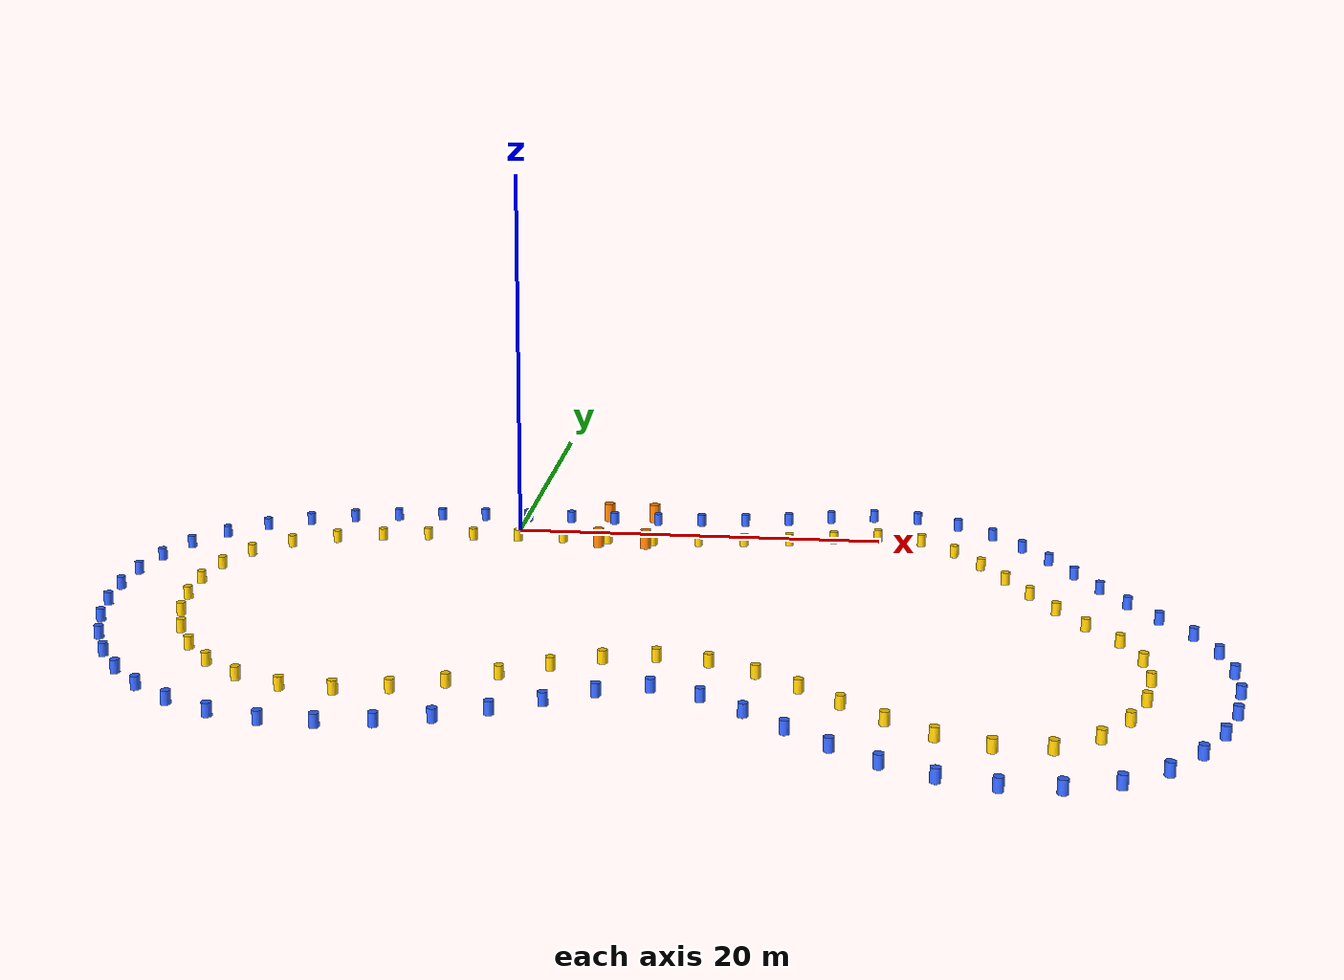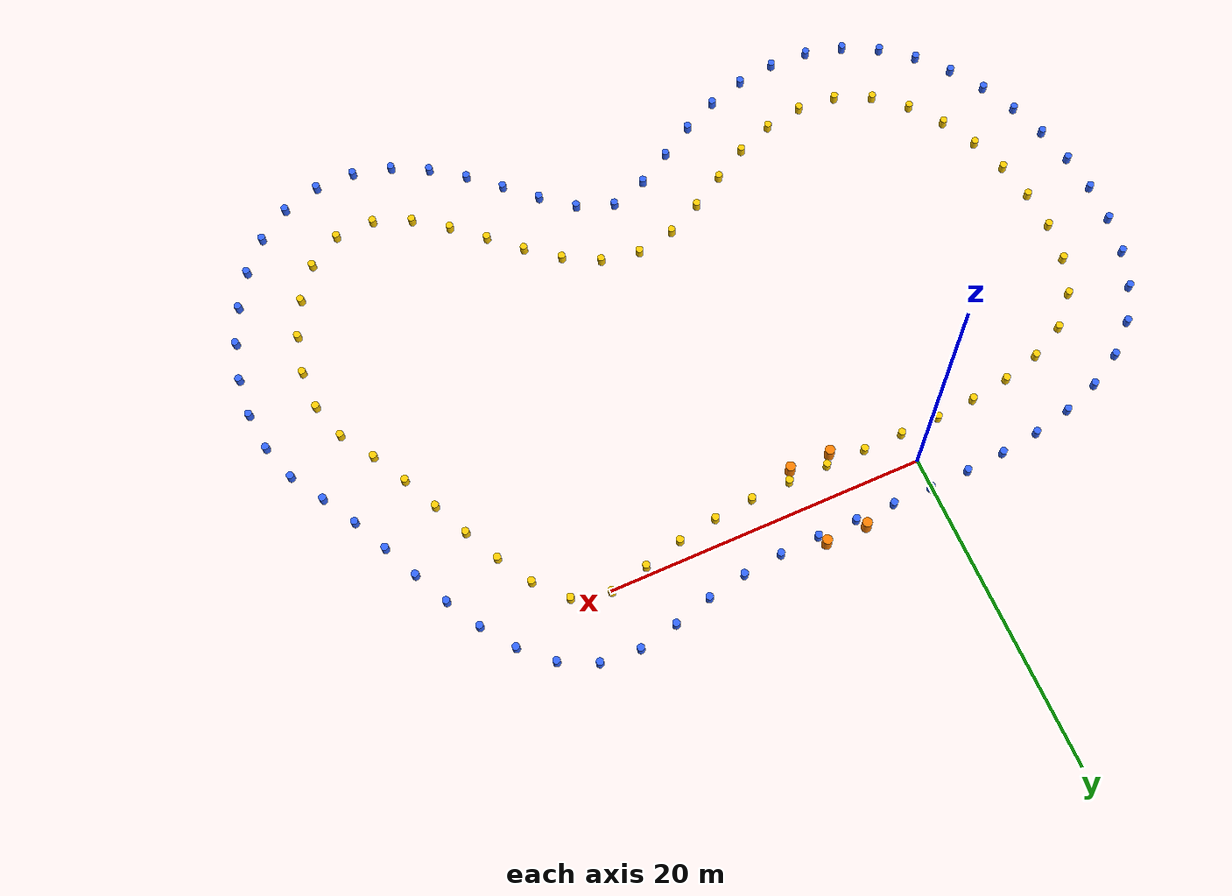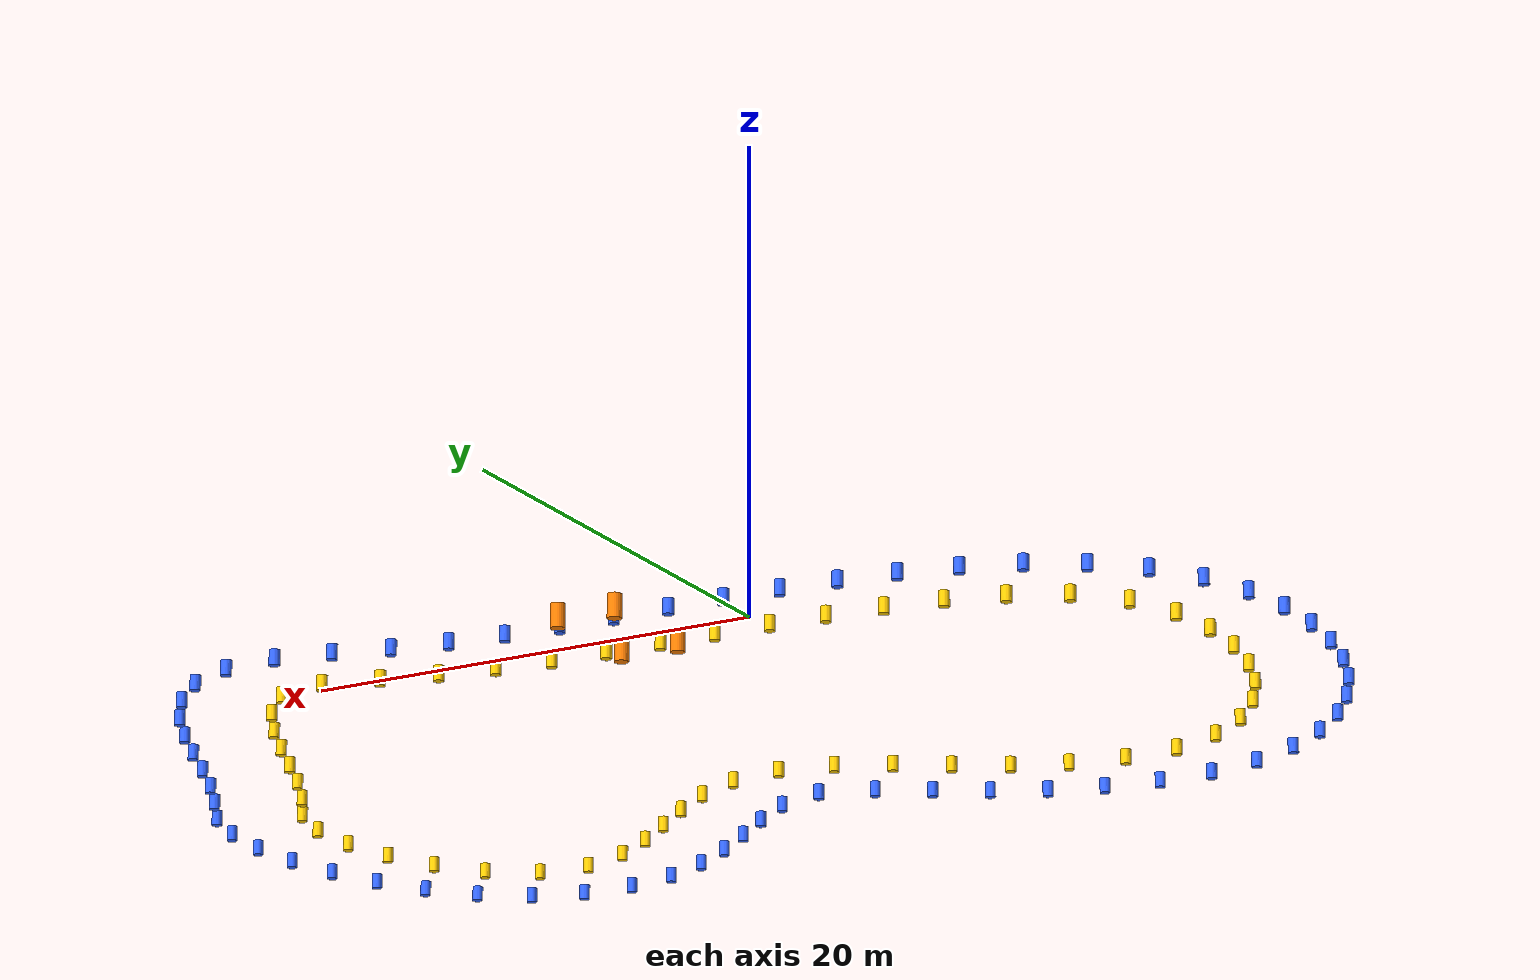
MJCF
<?xml version="1.0" ?>
<mujoco model="random_track">
  <compiler angle="radian" coordinate="local" autolimits="true"/>
  <default>
    <default class="cone">
      <joint type="free" damping="0.1" frictionloss="0.05"/>
      <geom condim="4" friction="0.5 0.005 0.0001" solref="0.02 1.0" solimp="0.99 0.99 0.001"/>
    </default>
  </default>
  <asset>
    <material name="blue_cone" rgba="0.2 0.4 1.0 1.0" specular="0.5" shininess="0.2"/>
    <material name="yellow_cone" rgba="1.0 0.8 0.0 1.0" specular="0.5" shininess="0.2"/>
    <material name="orange_cone" rgba="1.0 0.5 0.0 1.0" specular="0.5" shininess="0.2"/>
  </asset>
  <worldbody>
    <body name="cone_left_0000" pos="9.728265726091813 -23.504329453617913 0.325">
      <joint name="cone_left_joint_0000" type="free" damping="0.1" frictionloss="0.05"/>
      <geom name="cone_left_vis_0000" type="cylinder" size="0.228 0.325" material="blue_cone" mass="1.0" density="100" condim="4" friction="0.5 0.005 0.0001" solref="0.02 1.0" solimp="0.99 0.99 0.001"/>
    </body>
    <body name="cone_left_0001" pos="7.4020776837619024 -24.30468990198235 0.325">
      <joint name="cone_left_joint_0001" type="free" damping="0.1" frictionloss="0.05"/>
      <geom name="cone_left_vis_0001" type="cylinder" size="0.228 0.325" material="blue_cone" mass="1.0" density="100" condim="4" friction="0.5 0.005 0.0001" solref="0.02 1.0" solimp="0.99 0.99 0.001"/>
    </body>
    <body name="cone_left_0002" pos="5.268614257110258 -25.569127082905304 0.325">
      <joint name="cone_left_joint_0002" type="free" damping="0.1" frictionloss="0.05"/>
      <geom name="cone_left_vis_0002" type="cylinder" size="0.228 0.325" material="blue_cone" mass="1.0" density="100" condim="4" friction="0.5 0.005 0.0001" solref="0.02 1.0" solimp="0.99 0.99 0.001"/>
    </body>
    <body name="cone_left_0003" pos="3.135994896420222 -26.83525465517925 0.325">
      <joint name="cone_left_joint_0003" type="free" damping="0.1" frictionloss="0.05"/>
      <geom name="cone_left_vis_0003" type="cylinder" size="0.228 0.325" material="blue_cone" mass="1.0" density="100" condim="4" friction="0.5 0.005 0.0001" solref="0.02 1.0" solimp="0.99 0.99 0.001"/>
    </body>
    <body name="cone_left_0004" pos="0.896569729005499 -27.89783842715937 0.325">
      <joint name="cone_left_joint_0004" type="free" damping="0.1" frictionloss="0.05"/>
      <geom name="cone_left_vis_0004" type="cylinder" size="0.228 0.325" material="blue_cone" mass="1.0" density="100" condim="4" friction="0.5 0.005 0.0001" solref="0.02 1.0" solimp="0.99 0.99 0.001"/>
    </body>
    <body name="cone_left_0005" pos="-1.4673568981060328 -28.641685663491884 0.325">
      <joint name="cone_left_joint_0005" type="free" damping="0.1" frictionloss="0.05"/>
      <geom name="cone_left_vis_0005" type="cylinder" size="0.228 0.325" material="blue_cone" mass="1.0" density="100" condim="4" friction="0.5 0.005 0.0001" solref="0.02 1.0" solimp="0.99 0.99 0.001"/>
    </body>
    <body name="cone_left_0006" pos="-3.9179085333184602 -29.00594339214217 0.325">
      <joint name="cone_left_joint_0006" type="free" damping="0.1" frictionloss="0.05"/>
      <geom name="cone_left_vis_0006" type="cylinder" size="0.228 0.325" material="blue_cone" mass="1.0" density="100" condim="4" friction="0.5 0.005 0.0001" solref="0.02 1.0" solimp="0.99 0.99 0.001"/>
    </body>
    <body name="cone_left_0007" pos="-6.3927937042840135 -28.918925698790765 0.325">
      <joint name="cone_left_joint_0007" type="free" damping="0.1" frictionloss="0.05"/>
      <geom name="cone_left_vis_0007" type="cylinder" size="0.228 0.325" material="blue_cone" mass="1.0" density="100" condim="4" friction="0.5 0.005 0.0001" solref="0.02 1.0" solimp="0.99 0.99 0.001"/>
    </body>
    <body name="cone_left_0008" pos="-8.792770148159871 -28.313469615702715 0.325">
      <joint name="cone_left_joint_0008" type="free" damping="0.1" frictionloss="0.05"/>
      <geom name="cone_left_vis_0008" type="cylinder" size="0.228 0.325" material="blue_cone" mass="1.0" density="100" condim="4" friction="0.5 0.005 0.0001" solref="0.02 1.0" solimp="0.99 0.99 0.001"/>
    </body>
    <body name="cone_left_0009" pos="-10.997108146379261 -27.18690193711859 0.325">
      <joint name="cone_left_joint_0009" type="free" damping="0.1" frictionloss="0.05"/>
      <geom name="cone_left_vis_0009" type="cylinder" size="0.228 0.325" material="blue_cone" mass="1.0" density="100" condim="4" friction="0.5 0.005 0.0001" solref="0.02 1.0" solimp="0.99 0.99 0.001"/>
    </body>
    <body name="cone_left_0010" pos="-12.931268482255966 -25.639733980462758 0.325">
      <joint name="cone_left_joint_0010" type="free" damping="0.1" frictionloss="0.05"/>
      <geom name="cone_left_vis_0010" type="cylinder" size="0.228 0.325" material="blue_cone" mass="1.0" density="100" condim="4" friction="0.5 0.005 0.0001" solref="0.02 1.0" solimp="0.99 0.99 0.001"/>
    </body>
    <body name="cone_left_0011" pos="-14.573021458839388 -23.783814786753794 0.325">
      <joint name="cone_left_joint_0011" type="free" damping="0.1" frictionloss="0.05"/>
      <geom name="cone_left_vis_0011" type="cylinder" size="0.228 0.325" material="blue_cone" mass="1.0" density="100" condim="4" friction="0.5 0.005 0.0001" solref="0.02 1.0" solimp="0.99 0.99 0.001"/>
    </body>
    <body name="cone_left_0012" pos="-15.92704050537225 -21.707837692918595 0.325">
      <joint name="cone_left_joint_0012" type="free" damping="0.1" frictionloss="0.05"/>
      <geom name="cone_left_vis_0012" type="cylinder" size="0.228 0.325" material="blue_cone" mass="1.0" density="100" condim="4" friction="0.5 0.005 0.0001" solref="0.02 1.0" solimp="0.99 0.99 0.001"/>
    </body>
    <body name="cone_left_0013" pos="-17.00479348696907 -19.47546018363994 0.325">
      <joint name="cone_left_joint_0013" type="free" damping="0.1" frictionloss="0.05"/>
      <geom name="cone_left_vis_0013" type="cylinder" size="0.228 0.325" material="blue_cone" mass="1.0" density="100" condim="4" friction="0.5 0.005 0.0001" solref="0.02 1.0" solimp="0.99 0.99 0.001"/>
    </body>
    <body name="cone_left_0014" pos="-17.81670067838189 -17.13303848239041 0.325">
      <joint name="cone_left_joint_0014" type="free" damping="0.1" frictionloss="0.05"/>
      <geom name="cone_left_vis_0014" type="cylinder" size="0.228 0.325" material="blue_cone" mass="1.0" density="100" condim="4" friction="0.5 0.005 0.0001" solref="0.02 1.0" solimp="0.99 0.99 0.001"/>
    </body>
    <body name="cone_left_0015" pos="-18.36425972587672 -14.715100868699707 0.325">
      <joint name="cone_left_joint_0015" type="free" damping="0.1" frictionloss="0.05"/>
      <geom name="cone_left_vis_0015" type="cylinder" size="0.228 0.325" material="blue_cone" mass="1.0" density="100" condim="4" friction="0.5 0.005 0.0001" solref="0.02 1.0" solimp="0.99 0.99 0.001"/>
    </body>
    <body name="cone_left_0016" pos="-18.634315336108095 -12.2508492829908 0.325">
      <joint name="cone_left_joint_0016" type="free" damping="0.1" frictionloss="0.05"/>
      <geom name="cone_left_vis_0016" type="cylinder" size="0.228 0.325" material="blue_cone" mass="1.0" density="100" condim="4" friction="0.5 0.005 0.0001" solref="0.02 1.0" solimp="0.99 0.99 0.001"/>
    </body>
    <body name="cone_left_0017" pos="-18.59591018153526 -9.772554962005287 0.325">
      <joint name="cone_left_joint_0017" type="free" damping="0.1" frictionloss="0.05"/>
      <geom name="cone_left_vis_0017" type="cylinder" size="0.228 0.325" material="blue_cone" mass="1.0" density="100" condim="4" friction="0.5 0.005 0.0001" solref="0.02 1.0" solimp="0.99 0.99 0.001"/>
    </body>
    <body name="cone_left_0018" pos="-18.19708528801242 -7.327110549585768 0.325">
      <joint name="cone_left_joint_0018" type="free" damping="0.1" frictionloss="0.05"/>
      <geom name="cone_left_vis_0018" type="cylinder" size="0.228 0.325" material="blue_cone" mass="1.0" density="100" condim="4" friction="0.5 0.005 0.0001" solref="0.02 1.0" solimp="0.99 0.99 0.001"/>
    </body>
    <body name="cone_left_0019" pos="-17.365390780125594 -4.9947567060267914 0.325">
      <joint name="cone_left_joint_0019" type="free" damping="0.1" frictionloss="0.05"/>
      <geom name="cone_left_vis_0019" type="cylinder" size="0.228 0.325" material="blue_cone" mass="1.0" density="100" condim="4" friction="0.5 0.005 0.0001" solref="0.02 1.0" solimp="0.99 0.99 0.001"/>
    </body>
    <body name="cone_left_0020" pos="-16.030215566027472 -2.912140676148539 0.325">
      <joint name="cone_left_joint_0020" type="free" damping="0.1" frictionloss="0.05"/>
      <geom name="cone_left_vis_0020" type="cylinder" size="0.228 0.325" material="blue_cone" mass="1.0" density="100" condim="4" friction="0.5 0.005 0.0001" solref="0.02 1.0" solimp="0.99 0.99 0.001"/>
    </body>
    <body name="cone_left_0021" pos="-14.208869604302425 -1.2378606676420247 0.325">
      <joint name="cone_left_joint_0021" type="free" damping="0.1" frictionloss="0.05"/>
      <geom name="cone_left_vis_0021" type="cylinder" size="0.228 0.325" material="blue_cone" mass="1.0" density="100" condim="4" friction="0.5 0.005 0.0001" solref="0.02 1.0" solimp="0.99 0.99 0.001"/>
    </body>
    <body name="cone_left_0022" pos="-12.055587197474914 -0.015124917085017842 0.325">
      <joint name="cone_left_joint_0022" type="free" damping="0.1" frictionloss="0.05"/>
      <geom name="cone_left_vis_0022" type="cylinder" size="0.228 0.325" material="blue_cone" mass="1.0" density="100" condim="4" friction="0.5 0.005 0.0001" solref="0.02 1.0" solimp="0.99 0.99 0.001"/>
    </body>
    <body name="cone_left_0023" pos="-9.720920393553186 0.8159391345700442 0.325">
      <joint name="cone_left_joint_0023" type="free" damping="0.1" frictionloss="0.05"/>
      <geom name="cone_left_vis_0023" type="cylinder" size="0.228 0.325" material="blue_cone" mass="1.0" density="100" condim="4" friction="0.5 0.005 0.0001" solref="0.02 1.0" solimp="0.99 0.99 0.001"/>
    </body>
    <body name="cone_left_0024" pos="-7.299571189504263 1.3488570782862581 0.325">
      <joint name="cone_left_joint_0024" type="free" damping="0.1" frictionloss="0.05"/>
      <geom name="cone_left_vis_0024" type="cylinder" size="0.228 0.325" material="blue_cone" mass="1.0" density="100" condim="4" friction="0.5 0.005 0.0001" solref="0.02 1.0" solimp="0.99 0.99 0.001"/>
    </body>
    <body name="cone_left_0025" pos="-4.840169050569607 1.6669470691053334 0.325">
      <joint name="cone_left_joint_0025" type="free" damping="0.1" frictionloss="0.05"/>
      <geom name="cone_left_vis_0025" type="cylinder" size="0.228 0.325" material="blue_cone" mass="1.0" density="100" condim="4" friction="0.5 0.005 0.0001" solref="0.02 1.0" solimp="0.99 0.99 0.001"/>
    </body>
    <body name="cone_left_0026" pos="-2.3656578266173653 1.8345651387532342 0.325">
      <joint name="cone_left_joint_0026" type="free" damping="0.1" frictionloss="0.05"/>
      <geom name="cone_left_vis_0026" type="cylinder" size="0.228 0.325" material="blue_cone" mass="1.0" density="100" condim="4" friction="0.5 0.005 0.0001" solref="0.02 1.0" solimp="0.99 0.99 0.001"/>
    </body>
    <body name="cone_left_0027" pos="0.11376812079924292 1.9016730011369276 0.325">
      <joint name="cone_left_joint_0027" type="free" damping="0.1" frictionloss="0.05"/>
      <geom name="cone_left_vis_0027" type="cylinder" size="0.228 0.325" material="blue_cone" mass="1.0" density="100" condim="4" friction="0.5 0.005 0.0001" solref="0.02 1.0" solimp="0.99 0.99 0.001"/>
    </body>
    <body name="cone_left_0028" pos="2.5941683152644543 1.909752062994528 0.325">
      <joint name="cone_left_joint_0028" type="free" damping="0.1" frictionloss="0.05"/>
      <geom name="cone_left_vis_0028" type="cylinder" size="0.228 0.325" material="blue_cone" mass="1.0" density="100" condim="4" friction="0.5 0.005 0.0001" solref="0.02 1.0" solimp="0.99 0.99 0.001"/>
    </body>
    <body name="cone_left_0029" pos="5.0745854285158245 1.8993706383049727 0.325">
      <joint name="cone_left_joint_0029" type="free" damping="0.1" frictionloss="0.05"/>
      <geom name="cone_left_vis_0029" type="cylinder" size="0.228 0.325" material="blue_cone" mass="1.0" density="100" condim="4" friction="0.5 0.005 0.0001" solref="0.02 1.0" solimp="0.99 0.99 0.001"/>
    </body>
    <body name="cone_left_0030" pos="7.554906401221366 1.9175858708433822 0.325">
      <joint name="cone_left_joint_0030" type="free" damping="0.1" frictionloss="0.05"/>
      <geom name="cone_left_vis_0030" type="cylinder" size="0.228 0.325" material="blue_cone" mass="1.0" density="100" condim="4" friction="0.5 0.005 0.0001" solref="0.02 1.0" solimp="0.99 0.99 0.001"/>
    </body>
    <body name="cone_left_0031" pos="10.032946408234828 2.0212361302402115 0.325">
      <joint name="cone_left_joint_0031" type="free" damping="0.1" frictionloss="0.05"/>
      <geom name="cone_left_vis_0031" type="cylinder" size="0.228 0.325" material="blue_cone" mass="1.0" density="100" condim="4" friction="0.5 0.005 0.0001" solref="0.02 1.0" solimp="0.99 0.99 0.001"/>
    </body>
    <body name="cone_left_0032" pos="12.499873294651785 2.2744190536538866 0.325">
      <joint name="cone_left_joint_0032" type="free" damping="0.1" frictionloss="0.05"/>
      <geom name="cone_left_vis_0032" type="cylinder" size="0.228 0.325" material="blue_cone" mass="1.0" density="100" condim="4" friction="0.5 0.005 0.0001" solref="0.02 1.0" solimp="0.99 0.99 0.001"/>
    </body>
    <body name="cone_left_0033" pos="14.937154908793623 2.7304958029628494 0.325">
      <joint name="cone_left_joint_0033" type="free" damping="0.1" frictionloss="0.05"/>
      <geom name="cone_left_vis_0033" type="cylinder" size="0.228 0.325" material="blue_cone" mass="1.0" density="100" condim="4" friction="0.5 0.005 0.0001" solref="0.02 1.0" solimp="0.99 0.99 0.001"/>
    </body>
    <body name="cone_left_0034" pos="17.32991591031648 3.3830721485224586 0.325">
      <joint name="cone_left_joint_0034" type="free" damping="0.1" frictionloss="0.05"/>
      <geom name="cone_left_vis_0034" type="cylinder" size="0.228 0.325" material="blue_cone" mass="1.0" density="100" condim="4" friction="0.5 0.005 0.0001" solref="0.02 1.0" solimp="0.99 0.99 0.001"/>
    </body>
    <body name="cone_left_0035" pos="19.755862619129573 3.884558041433806 0.325">
      <joint name="cone_left_joint_0035" type="free" damping="0.1" frictionloss="0.05"/>
      <geom name="cone_left_vis_0035" type="cylinder" size="0.228 0.325" material="blue_cone" mass="1.0" density="100" condim="4" friction="0.5 0.005 0.0001" solref="0.02 1.0" solimp="0.99 0.99 0.001"/>
    </body>
    <body name="cone_left_0036" pos="22.214419422439583 3.6897345239000714 0.325">
      <joint name="cone_left_joint_0036" type="free" damping="0.1" frictionloss="0.05"/>
      <geom name="cone_left_vis_0036" type="cylinder" size="0.228 0.325" material="blue_cone" mass="1.0" density="100" condim="4" friction="0.5 0.005 0.0001" solref="0.02 1.0" solimp="0.99 0.99 0.001"/>
    </body>
    <body name="cone_left_0037" pos="24.436716652076008 2.6172078097225437 0.325">
      <joint name="cone_left_joint_0037" type="free" damping="0.1" frictionloss="0.05"/>
      <geom name="cone_left_vis_0037" type="cylinder" size="0.228 0.325" material="blue_cone" mass="1.0" density="100" condim="4" friction="0.5 0.005 0.0001" solref="0.02 1.0" solimp="0.99 0.99 0.001"/>
    </body>
    <body name="cone_left_0038" pos="26.242740800873655 0.9263466211415192 0.325">
      <joint name="cone_left_joint_0038" type="free" damping="0.1" frictionloss="0.05"/>
      <geom name="cone_left_vis_0038" type="cylinder" size="0.228 0.325" material="blue_cone" mass="1.0" density="100" condim="4" friction="0.5 0.005 0.0001" solref="0.02 1.0" solimp="0.99 0.99 0.001"/>
    </body>
    <body name="cone_left_0039" pos="27.68760960448428 -1.0870226157336162 0.325">
      <joint name="cone_left_joint_0039" type="free" damping="0.1" frictionloss="0.05"/>
      <geom name="cone_left_vis_0039" type="cylinder" size="0.228 0.325" material="blue_cone" mass="1.0" density="100" condim="4" friction="0.5 0.005 0.0001" solref="0.02 1.0" solimp="0.99 0.99 0.001"/>
    </body>
    <body name="cone_left_0040" pos="28.898695189950587 -3.250928273390585 0.325">
      <joint name="cone_left_joint_0040" type="free" damping="0.1" frictionloss="0.05"/>
      <geom name="cone_left_vis_0040" type="cylinder" size="0.228 0.325" material="blue_cone" mass="1.0" density="100" condim="4" friction="0.5 0.005 0.0001" solref="0.02 1.0" solimp="0.99 0.99 0.001"/>
    </body>
    <body name="cone_left_0041" pos="29.983652380552286 -5.481343375336422 0.325">
      <joint name="cone_left_joint_0041" type="free" damping="0.1" frictionloss="0.05"/>
      <geom name="cone_left_vis_0041" type="cylinder" size="0.228 0.325" material="blue_cone" mass="1.0" density="100" condim="4" friction="0.5 0.005 0.0001" solref="0.02 1.0" solimp="0.99 0.99 0.001"/>
    </body>
    <body name="cone_left_0042" pos="31.027118424165465 -7.731620763666172 0.325">
      <joint name="cone_left_joint_0042" type="free" damping="0.1" frictionloss="0.05"/>
      <geom name="cone_left_vis_0042" type="cylinder" size="0.228 0.325" material="blue_cone" mass="1.0" density="100" condim="4" friction="0.5 0.005 0.0001" solref="0.02 1.0" solimp="0.99 0.99 0.001"/>
    </body>
    <body name="cone_left_0043" pos="32.110124490185 -9.962970215645683 0.325">
      <joint name="cone_left_joint_0043" type="free" damping="0.1" frictionloss="0.05"/>
      <geom name="cone_left_vis_0043" type="cylinder" size="0.228 0.325" material="blue_cone" mass="1.0" density="100" condim="4" friction="0.5 0.005 0.0001" solref="0.02 1.0" solimp="0.99 0.99 0.001"/>
    </body>
    <body name="cone_left_0044" pos="33.33921697790839 -12.116227544203952 0.325">
      <joint name="cone_left_joint_0044" type="free" damping="0.1" frictionloss="0.05"/>
      <geom name="cone_left_vis_0044" type="cylinder" size="0.228 0.325" material="blue_cone" mass="1.0" density="100" condim="4" friction="0.5 0.005 0.0001" solref="0.02 1.0" solimp="0.99 0.99 0.001"/>
    </body>
    <body name="cone_left_0045" pos="34.62937839824687 -14.230102925712046 0.325">
      <joint name="cone_left_joint_0045" type="free" damping="0.1" frictionloss="0.05"/>
      <geom name="cone_left_vis_0045" type="cylinder" size="0.228 0.325" material="blue_cone" mass="1.0" density="100" condim="4" friction="0.5 0.005 0.0001" solref="0.02 1.0" solimp="0.99 0.99 0.001"/>
    </body>
    <body name="cone_left_0046" pos="35.397815048903254 -16.582636594140133 0.325">
      <joint name="cone_left_joint_0046" type="free" damping="0.1" frictionloss="0.05"/>
      <geom name="cone_left_vis_0046" type="cylinder" size="0.228 0.325" material="blue_cone" mass="1.0" density="100" condim="4" friction="0.5 0.005 0.0001" solref="0.02 1.0" solimp="0.99 0.99 0.001"/>
    </body>
    <body name="cone_left_0047" pos="35.6522112788532 -19.04608768622883 0.325">
      <joint name="cone_left_joint_0047" type="free" damping="0.1" frictionloss="0.05"/>
      <geom name="cone_left_vis_0047" type="cylinder" size="0.228 0.325" material="blue_cone" mass="1.0" density="100" condim="4" friction="0.5 0.005 0.0001" solref="0.02 1.0" solimp="0.99 0.99 0.001"/>
    </body>
    <body name="cone_left_0048" pos="35.464390313198564 -21.516556440749575 0.325">
      <joint name="cone_left_joint_0048" type="free" damping="0.1" frictionloss="0.05"/>
      <geom name="cone_left_vis_0048" type="cylinder" size="0.228 0.325" material="blue_cone" mass="1.0" density="100" condim="4" friction="0.5 0.005 0.0001" solref="0.02 1.0" solimp="0.99 0.99 0.001"/>
    </body>
    <body name="cone_left_0049" pos="34.89309957853153 -23.92791409431539 0.325">
      <joint name="cone_left_joint_0049" type="free" damping="0.1" frictionloss="0.05"/>
      <geom name="cone_left_vis_0049" type="cylinder" size="0.228 0.325" material="blue_cone" mass="1.0" density="100" condim="4" friction="0.5 0.005 0.0001" solref="0.02 1.0" solimp="0.99 0.99 0.001"/>
    </body>
    <body name="cone_left_0050" pos="33.972329866915956 -26.22868483358164 0.325">
      <joint name="cone_left_joint_0050" type="free" damping="0.1" frictionloss="0.05"/>
      <geom name="cone_left_vis_0050" type="cylinder" size="0.228 0.325" material="blue_cone" mass="1.0" density="100" condim="4" friction="0.5 0.005 0.0001" solref="0.02 1.0" solimp="0.99 0.99 0.001"/>
    </body>
    <body name="cone_left_0051" pos="32.7133901548427 -28.362847563966 0.325">
      <joint name="cone_left_joint_0051" type="free" damping="0.1" frictionloss="0.05"/>
      <geom name="cone_left_vis_0051" type="cylinder" size="0.228 0.325" material="blue_cone" mass="1.0" density="100" condim="4" friction="0.5 0.005 0.0001" solref="0.02 1.0" solimp="0.99 0.99 0.001"/>
    </body>
    <body name="cone_left_0052" pos="31.099938029190056 -30.241092515044514 0.325">
      <joint name="cone_left_joint_0052" type="free" damping="0.1" frictionloss="0.05"/>
      <geom name="cone_left_vis_0052" type="cylinder" size="0.228 0.325" material="blue_cone" mass="1.0" density="100" condim="4" friction="0.5 0.005 0.0001" solref="0.02 1.0" solimp="0.99 0.99 0.001"/>
    </body>
    <body name="cone_left_0053" pos="29.075828068408853 -31.65934876975443 0.325">
      <joint name="cone_left_joint_0053" type="free" damping="0.1" frictionloss="0.05"/>
      <geom name="cone_left_vis_0053" type="cylinder" size="0.228 0.325" material="blue_cone" mass="1.0" density="100" condim="4" friction="0.5 0.005 0.0001" solref="0.02 1.0" solimp="0.99 0.99 0.001"/>
    </body>
    <body name="cone_left_0054" pos="26.716274506325696 -32.39238933648521 0.325">
      <joint name="cone_left_joint_0054" type="free" damping="0.1" frictionloss="0.05"/>
      <geom name="cone_left_vis_0054" type="cylinder" size="0.228 0.325" material="blue_cone" mass="1.0" density="100" condim="4" friction="0.5 0.005 0.0001" solref="0.02 1.0" solimp="0.99 0.99 0.001"/>
    </body>
    <body name="cone_left_0055" pos="24.2436402114876 -32.432899502322876 0.325">
      <joint name="cone_left_joint_0055" type="free" damping="0.1" frictionloss="0.05"/>
      <geom name="cone_left_vis_0055" type="cylinder" size="0.228 0.325" material="blue_cone" mass="1.0" density="100" condim="4" friction="0.5 0.005 0.0001" solref="0.02 1.0" solimp="0.99 0.99 0.001"/>
    </body>
    <body name="cone_left_0056" pos="21.844005790216883 -31.832403123136643 0.325">
      <joint name="cone_left_joint_0056" type="free" damping="0.1" frictionloss="0.05"/>
      <geom name="cone_left_vis_0056" type="cylinder" size="0.228 0.325" material="blue_cone" mass="1.0" density="100" condim="4" friction="0.5 0.005 0.0001" solref="0.02 1.0" solimp="0.99 0.99 0.001"/>
    </body>
    <body name="cone_left_0057" pos="19.64002742065776 -30.7030257703412 0.325">
      <joint name="cone_left_joint_0057" type="free" damping="0.1" frictionloss="0.05"/>
      <geom name="cone_left_vis_0057" type="cylinder" size="0.228 0.325" material="blue_cone" mass="1.0" density="100" condim="4" friction="0.5 0.005 0.0001" solref="0.02 1.0" solimp="0.99 0.99 0.001"/>
    </body>
    <body name="cone_left_0058" pos="17.638916902257023 -29.239951947980266 0.325">
      <joint name="cone_left_joint_0058" type="free" damping="0.1" frictionloss="0.05"/>
      <geom name="cone_left_vis_0058" type="cylinder" size="0.228 0.325" material="blue_cone" mass="1.0" density="100" condim="4" friction="0.5 0.005 0.0001" solref="0.02 1.0" solimp="0.99 0.99 0.001"/>
    </body>
    <body name="cone_left_0059" pos="15.772720943811066 -27.6064601725137 0.325">
      <joint name="cone_left_joint_0059" type="free" damping="0.1" frictionloss="0.05"/>
      <geom name="cone_left_vis_0059" type="cylinder" size="0.228 0.325" material="blue_cone" mass="1.0" density="100" condim="4" friction="0.5 0.005 0.0001" solref="0.02 1.0" solimp="0.99 0.99 0.001"/>
    </body>
    <body name="cone_left_0060" pos="13.942393406449042 -25.932442603359007 0.325">
      <joint name="cone_left_joint_0060" type="free" damping="0.1" frictionloss="0.05"/>
      <geom name="cone_left_vis_0060" type="cylinder" size="0.228 0.325" material="blue_cone" mass="1.0" density="100" condim="4" friction="0.5 0.005 0.0001" solref="0.02 1.0" solimp="0.99 0.99 0.001"/>
    </body>
    <body name="cone_left_0061" pos="12.007954750598053 -24.382758423351902 0.325">
      <joint name="cone_left_joint_0061" type="free" damping="0.1" frictionloss="0.05"/>
      <geom name="cone_left_vis_0061" type="cylinder" size="0.228 0.325" material="blue_cone" mass="1.0" density="100" condim="4" friction="0.5 0.005 0.0001" solref="0.02 1.0" solimp="0.99 0.99 0.001"/>
    </body>
    <body name="cone_right_0000" pos="9.619544156643578 -19.707636493619205 0.325">
      <joint name="cone_right_joint_0000" type="free" damping="0.1" frictionloss="0.05"/>
      <geom name="cone_right_vis_0000" type="cylinder" size="0.228 0.325" material="yellow_cone" mass="1.0" condim="4" friction="0.5 0.005 0.0001"/>
    </body>
    <body name="cone_right_0001" pos="7.189355734363296 -20.22313222622911 0.325">
      <joint name="cone_right_joint_0001" type="free" damping="0.1" frictionloss="0.05"/>
      <geom name="cone_right_vis_0001" type="cylinder" size="0.228 0.325" material="yellow_cone" mass="1.0" condim="4" friction="0.5 0.005 0.0001"/>
    </body>
    <body name="cone_right_0002" pos="4.948480866675659 -21.321668201281668 0.325">
      <joint name="cone_right_joint_0002" type="free" damping="0.1" frictionloss="0.05"/>
      <geom name="cone_right_vis_0002" type="cylinder" size="0.228 0.325" material="yellow_cone" mass="1.0" condim="4" friction="0.5 0.005 0.0001"/>
    </body>
    <body name="cone_right_0003" pos="2.8133541295442512 -22.618727090827427 0.325">
      <joint name="cone_right_joint_0003" type="free" damping="0.1" frictionloss="0.05"/>
      <geom name="cone_right_vis_0003" type="cylinder" size="0.228 0.325" material="yellow_cone" mass="1.0" condim="4" friction="0.5 0.005 0.0001"/>
    </body>
    <body name="cone_right_0004" pos="0.6424548305771864 -23.8535236012724 0.325">
      <joint name="cone_right_joint_0004" type="free" damping="0.1" frictionloss="0.05"/>
      <geom name="cone_right_vis_0004" type="cylinder" size="0.228 0.325" material="yellow_cone" mass="1.0" condim="4" friction="0.5 0.005 0.0001"/>
    </body>
    <body name="cone_right_0005" pos="-1.6784216278160073 -24.76937335608477 0.325">
      <joint name="cone_right_joint_0005" type="free" damping="0.1" frictionloss="0.05"/>
      <geom name="cone_right_vis_0005" type="cylinder" size="0.228 0.325" material="yellow_cone" mass="1.0" condim="4" friction="0.5 0.005 0.0001"/>
    </body>
    <body name="cone_right_0006" pos="-4.132055662817336 -25.21189497163938 0.325">
      <joint name="cone_right_joint_0006" type="free" damping="0.1" frictionloss="0.05"/>
      <geom name="cone_right_vis_0006" type="cylinder" size="0.228 0.325" material="yellow_cone" mass="1.0" condim="4" friction="0.5 0.005 0.0001"/>
    </body>
    <body name="cone_right_0007" pos="-6.613378539878056 -25.015919716899205 0.325">
      <joint name="cone_right_joint_0007" type="free" damping="0.1" frictionloss="0.05"/>
      <geom name="cone_right_vis_0007" type="cylinder" size="0.228 0.325" material="yellow_cone" mass="1.0" condim="4" friction="0.5 0.005 0.0001"/>
    </body>
    <body name="cone_right_0008" pos="-8.892439731344954 -24.022672712089822 0.325">
      <joint name="cone_right_joint_0008" type="free" damping="0.1" frictionloss="0.05"/>
      <geom name="cone_right_vis_0008" type="cylinder" size="0.228 0.325" material="yellow_cone" mass="1.0" condim="4" friction="0.5 0.005 0.0001"/>
    </body>
    <body name="cone_right_0009" pos="-10.784790241033903 -22.401721628471442 0.325">
      <joint name="cone_right_joint_0009" type="free" damping="0.1" frictionloss="0.05"/>
      <geom name="cone_right_vis_0009" type="cylinder" size="0.228 0.325" material="yellow_cone" mass="1.0" condim="4" friction="0.5 0.005 0.0001"/>
    </body>
    <body name="cone_right_0010" pos="-12.283545005335831 -20.407517520879424 0.325">
      <joint name="cone_right_joint_0010" type="free" damping="0.1" frictionloss="0.05"/>
      <geom name="cone_right_vis_0010" type="cylinder" size="0.228 0.325" material="yellow_cone" mass="1.0" condim="4" friction="0.5 0.005 0.0001"/>
    </body>
    <body name="cone_right_0011" pos="-13.424582475324772 -18.187763468936303 0.325">
      <joint name="cone_right_joint_0011" type="free" damping="0.1" frictionloss="0.05"/>
      <geom name="cone_right_vis_0011" type="cylinder" size="0.228 0.325" material="yellow_cone" mass="1.0" condim="4" friction="0.5 0.005 0.0001"/>
    </body>
    <body name="cone_right_0012" pos="-14.23566196867031 -15.826813039213391 0.325">
      <joint name="cone_right_joint_0012" type="free" damping="0.1" frictionloss="0.05"/>
      <geom name="cone_right_vis_0012" type="cylinder" size="0.228 0.325" material="yellow_cone" mass="1.0" condim="4" friction="0.5 0.005 0.0001"/>
    </body>
    <body name="cone_right_0013" pos="-14.721725083793185 -13.378195210570155 0.325">
      <joint name="cone_right_joint_0013" type="free" damping="0.1" frictionloss="0.05"/>
      <geom name="cone_right_vis_0013" type="cylinder" size="0.228 0.325" material="yellow_cone" mass="1.0" condim="4" friction="0.5 0.005 0.0001"/>
    </body>
    <body name="cone_right_0014" pos="-14.853068432737324 -10.885799451002896 0.325">
      <joint name="cone_right_joint_0014" type="free" damping="0.1" frictionloss="0.05"/>
      <geom name="cone_right_vis_0014" type="cylinder" size="0.228 0.325" material="yellow_cone" mass="1.0" condim="4" friction="0.5 0.005 0.0001"/>
    </body>
    <body name="cone_right_0015" pos="-14.54945585941406 -8.410252726180403 0.325">
      <joint name="cone_right_joint_0015" type="free" damping="0.1" frictionloss="0.05"/>
      <geom name="cone_right_vis_0015" type="cylinder" size="0.228 0.325" material="yellow_cone" mass="1.0" condim="4" friction="0.5 0.005 0.0001"/>
    </body>
    <body name="cone_right_0016" pos="-13.644978272528977 -6.0922654472054205 0.325">
      <joint name="cone_right_joint_0016" type="free" damping="0.1" frictionloss="0.05"/>
      <geom name="cone_right_vis_0016" type="cylinder" size="0.228 0.325" material="yellow_cone" mass="1.0" condim="4" friction="0.5 0.005 0.0001"/>
    </body>
    <body name="cone_right_0017" pos="-11.942836811882106 -4.2892368353444965 0.325">
      <joint name="cone_right_joint_0017" type="free" damping="0.1" frictionloss="0.05"/>
      <geom name="cone_right_vis_0017" type="cylinder" size="0.228 0.325" material="yellow_cone" mass="1.0" condim="4" friction="0.5 0.005 0.0001"/>
    </body>
    <body name="cone_right_0018" pos="-9.718323111609774 -3.16826004850806 0.325">
      <joint name="cone_right_joint_0018" type="free" damping="0.1" frictionloss="0.05"/>
      <geom name="cone_right_vis_0018" type="cylinder" size="0.228 0.325" material="yellow_cone" mass="1.0" condim="4" friction="0.5 0.005 0.0001"/>
    </body>
    <body name="cone_right_0019" pos="-7.309162319554048 -2.5157783861949383 0.325">
      <joint name="cone_right_joint_0019" type="free" damping="0.1" frictionloss="0.05"/>
      <geom name="cone_right_vis_0019" type="cylinder" size="0.228 0.325" material="yellow_cone" mass="1.0" condim="4" friction="0.5 0.005 0.0001"/>
    </body>
    <body name="cone_right_0020" pos="-4.838393192736145 -2.1516645010931086 0.325">
      <joint name="cone_right_joint_0020" type="free" damping="0.1" frictionloss="0.05"/>
      <geom name="cone_right_vis_0020" type="cylinder" size="0.228 0.325" material="yellow_cone" mass="1.0" condim="4" friction="0.5 0.005 0.0001"/>
    </body>
    <body name="cone_right_0021" pos="-2.3471308167843077 -1.9685517434343467 0.325">
      <joint name="cone_right_joint_0021" type="free" damping="0.1" frictionloss="0.05"/>
      <geom name="cone_right_vis_0021" type="cylinder" size="0.228 0.325" material="yellow_cone" mass="1.0" condim="4" friction="0.5 0.005 0.0001"/>
    </body>
    <body name="cone_right_0022" pos="0.1500787258534828 -1.8981640091246135 0.325">
      <joint name="cone_right_joint_0022" type="free" damping="0.1" frictionloss="0.05"/>
      <geom name="cone_right_vis_0022" type="cylinder" size="0.228 0.325" material="yellow_cone" mass="1.0" condim="4" friction="0.5 0.005 0.0001"/>
    </body>
    <body name="cone_right_0023" pos="2.6483644051888575 -1.8904634845027175 0.325">
      <joint name="cone_right_joint_0023" type="free" damping="0.1" frictionloss="0.05"/>
      <geom name="cone_right_vis_0023" type="cylinder" size="0.228 0.325" material="yellow_cone" mass="1.0" condim="4" friction="0.5 0.005 0.0001"/>
    </body>
    <body name="cone_right_0024" pos="5.146667235901191 -1.9007624882207068 0.325">
      <joint name="cone_right_joint_0024" type="free" damping="0.1" frictionloss="0.05"/>
      <geom name="cone_right_vis_0024" type="cylinder" size="0.228 0.325" material="yellow_cone" mass="1.0" condim="4" friction="0.5 0.005 0.0001"/>
    </body>
    <body name="cone_right_0025" pos="7.644865720586836 -1.8813654082402138 0.325">
      <joint name="cone_right_joint_0025" type="free" damping="0.1" frictionloss="0.05"/>
      <geom name="cone_right_vis_0025" type="cylinder" size="0.228 0.325" material="yellow_cone" mass="1.0" condim="4" friction="0.5 0.005 0.0001"/>
    </body>
    <body name="cone_right_0026" pos="10.140929199235806 -1.779929894589145 0.325">
      <joint name="cone_right_joint_0026" type="free" damping="0.1" frictionloss="0.05"/>
      <geom name="cone_right_vis_0026" type="cylinder" size="0.228 0.325" material="yellow_cone" mass="1.0" condim="4" friction="0.5 0.005 0.0001"/>
    </body>
    <body name="cone_right_0027" pos="12.6275518344235 -1.5429116569630281 0.325">
      <joint name="cone_right_joint_0027" type="free" damping="0.1" frictionloss="0.05"/>
      <geom name="cone_right_vis_0027" type="cylinder" size="0.228 0.325" material="yellow_cone" mass="1.0" condim="4" friction="0.5 0.005 0.0001"/>
    </body>
    <body name="cone_right_0028" pos="15.090535636999263 -1.128018784845338 0.325">
      <joint name="cone_right_joint_0028" type="free" damping="0.1" frictionloss="0.05"/>
      <geom name="cone_right_vis_0028" type="cylinder" size="0.228 0.325" material="yellow_cone" mass="1.0" condim="4" friction="0.5 0.005 0.0001"/>
    </body>
    <body name="cone_right_0029" pos="17.512262043304112 -0.5167250328333637 0.325">
      <joint name="cone_right_joint_0029" type="free" damping="0.1" frictionloss="0.05"/>
      <geom name="cone_right_vis_0029" type="cylinder" size="0.228 0.325" material="yellow_cone" mass="1.0" condim="4" friction="0.5 0.005 0.0001"/>
    </body>
    <body name="cone_right_0030" pos="19.9359916969116 0.0803245655508249 0.325">
      <joint name="cone_right_joint_0030" type="free" damping="0.1" frictionloss="0.05"/>
      <geom name="cone_right_vis_0030" type="cylinder" size="0.228 0.325" material="yellow_cone" mass="1.0" condim="4" friction="0.5 0.005 0.0001"/>
    </body>
    <body name="cone_right_0031" pos="22.28784544368819 -0.5182146773009038 0.325">
      <joint name="cone_right_joint_0031" type="free" damping="0.1" frictionloss="0.05"/>
      <geom name="cone_right_vis_0031" type="cylinder" size="0.228 0.325" material="yellow_cone" mass="1.0" condim="4" friction="0.5 0.005 0.0001"/>
    </body>
    <body name="cone_right_0032" pos="23.971563392482913 -2.3494340878848305 0.325">
      <joint name="cone_right_joint_0032" type="free" damping="0.1" frictionloss="0.05"/>
      <geom name="cone_right_vis_0032" type="cylinder" size="0.228 0.325" material="yellow_cone" mass="1.0" condim="4" friction="0.5 0.005 0.0001"/>
    </body>
    <body name="cone_right_0033" pos="25.25825137165438 -4.489184684610208 0.325">
      <joint name="cone_right_joint_0033" type="free" damping="0.1" frictionloss="0.05"/>
      <geom name="cone_right_vis_0033" type="cylinder" size="0.228 0.325" material="yellow_cone" mass="1.0" condim="4" friction="0.5 0.005 0.0001"/>
    </body>
    <body name="cone_right_0034" pos="26.370011201166477 -6.726234186101138 0.325">
      <joint name="cone_right_joint_0034" type="free" damping="0.1" frictionloss="0.05"/>
      <geom name="cone_right_vis_0034" type="cylinder" size="0.228 0.325" material="yellow_cone" mass="1.0" condim="4" friction="0.5 0.005 0.0001"/>
    </body>
    <body name="cone_right_0035" pos="27.422405636040693 -8.99208064288787 0.325">
      <joint name="cone_right_joint_0035" type="free" damping="0.1" frictionloss="0.05"/>
      <geom name="cone_right_vis_0035" type="cylinder" size="0.228 0.325" material="yellow_cone" mass="1.0" condim="4" friction="0.5 0.005 0.0001"/>
    </body>
    <body name="cone_right_0036" pos="28.500157121069762 -11.245881389738841 0.325">
      <joint name="cone_right_joint_0036" type="free" damping="0.1" frictionloss="0.05"/>
      <geom name="cone_right_vis_0036" type="cylinder" size="0.228 0.325" material="yellow_cone" mass="1.0" condim="4" friction="0.5 0.005 0.0001"/>
    </body>
    <body name="cone_right_0037" pos="29.68943047499394 -13.442343566473212 0.325">
      <joint name="cone_right_joint_0037" type="free" damping="0.1" frictionloss="0.05"/>
      <geom name="cone_right_vis_0037" type="cylinder" size="0.228 0.325" material="yellow_cone" mass="1.0" condim="4" friction="0.5 0.005 0.0001"/>
    </body>
    <body name="cone_right_0038" pos="31.03961459366394 -15.54296870619904 0.325">
      <joint name="cone_right_joint_0038" type="free" damping="0.1" frictionloss="0.05"/>
      <geom name="cone_right_vis_0038" type="cylinder" size="0.228 0.325" material="yellow_cone" mass="1.0" condim="4" friction="0.5 0.005 0.0001"/>
    </body>
    <body name="cone_right_0039" pos="31.771905501164184 -17.917742400586462 0.325">
      <joint name="cone_right_joint_0039" type="free" damping="0.1" frictionloss="0.05"/>
      <geom name="cone_right_vis_0039" type="cylinder" size="0.228 0.325" material="yellow_cone" mass="1.0" condim="4" friction="0.5 0.005 0.0001"/>
    </body>
    <body name="cone_right_0040" pos="31.780847505763504 -20.409778918255903 0.325">
      <joint name="cone_right_joint_0040" type="free" damping="0.1" frictionloss="0.05"/>
      <geom name="cone_right_vis_0040" type="cylinder" size="0.228 0.325" material="yellow_cone" mass="1.0" condim="4" friction="0.5 0.005 0.0001"/>
    </body>
    <body name="cone_right_0041" pos="31.24917245992225 -22.846659401044292 0.325">
      <joint name="cone_right_joint_0041" type="free" damping="0.1" frictionloss="0.05"/>
      <geom name="cone_right_vis_0041" type="cylinder" size="0.228 0.325" material="yellow_cone" mass="1.0" condim="4" friction="0.5 0.005 0.0001"/>
    </body>
    <body name="cone_right_0042" pos="30.257848647052825 -25.13558095333152 0.325">
      <joint name="cone_right_joint_0042" type="free" damping="0.1" frictionloss="0.05"/>
      <geom name="cone_right_vis_0042" type="cylinder" size="0.228 0.325" material="yellow_cone" mass="1.0" condim="4" friction="0.5 0.005 0.0001"/>
    </body>
    <body name="cone_right_0043" pos="28.808130792508734 -27.162763648823308 0.325">
      <joint name="cone_right_joint_0043" type="free" damping="0.1" frictionloss="0.05"/>
      <geom name="cone_right_vis_0043" type="cylinder" size="0.228 0.325" material="yellow_cone" mass="1.0" condim="4" friction="0.5 0.005 0.0001"/>
    </body>
    <body name="cone_right_0044" pos="26.73797178176543 -28.50454748036205 0.325">
      <joint name="cone_right_joint_0044" type="free" damping="0.1" frictionloss="0.05"/>
      <geom name="cone_right_vis_0044" type="cylinder" size="0.228 0.325" material="yellow_cone" mass="1.0" condim="4" friction="0.5 0.005 0.0001"/>
    </body>
    <body name="cone_right_0045" pos="24.264100444542827 -28.593743245322642 0.325">
      <joint name="cone_right_joint_0045" type="free" damping="0.1" frictionloss="0.05"/>
      <geom name="cone_right_vis_0045" type="cylinder" size="0.228 0.325" material="yellow_cone" mass="1.0" condim="4" friction="0.5 0.005 0.0001"/>
    </body>
    <body name="cone_right_0046" pos="21.95759319836278 -27.66703591573313 0.325">
      <joint name="cone_right_joint_0046" type="free" damping="0.1" frictionloss="0.05"/>
      <geom name="cone_right_vis_0046" type="cylinder" size="0.228 0.325" material="yellow_cone" mass="1.0" condim="4" friction="0.5 0.005 0.0001"/>
    </body>
    <body name="cone_right_0047" pos="19.933506789857397 -26.206890838522114 0.325">
      <joint name="cone_right_joint_0047" type="free" damping="0.1" frictionloss="0.05"/>
      <geom name="cone_right_vis_0047" type="cylinder" size="0.228 0.325" material="yellow_cone" mass="1.0" condim="4" friction="0.5 0.005 0.0001"/>
    </body>
    <body name="cone_right_0048" pos="18.06332803733965 -24.55080917954129 0.325">
      <joint name="cone_right_joint_0048" type="free" damping="0.1" frictionloss="0.05"/>
      <geom name="cone_right_vis_0048" type="cylinder" size="0.228 0.325" material="yellow_cone" mass="1.0" condim="4" friction="0.5 0.005 0.0001"/>
    </body>
    <body name="cone_right_0049" pos="16.215118519628682 -22.869921574877843 0.325">
      <joint name="cone_right_joint_0049" type="free" damping="0.1" frictionloss="0.05"/>
      <geom name="cone_right_vis_0049" type="cylinder" size="0.228 0.325" material="yellow_cone" mass="1.0" condim="4" friction="0.5 0.005 0.0001"/>
    </body>
    <body name="cone_right_0050" pos="14.258790500209976 -21.318313549455773 0.325">
      <joint name="cone_right_joint_0050" type="free" damping="0.1" frictionloss="0.05"/>
      <geom name="cone_right_vis_0050" type="cylinder" size="0.228 0.325" material="yellow_cone" mass="1.0" condim="4" friction="0.5 0.005 0.0001"/>
    </body>
    <body name="cone_right_0051" pos="12.064483477806363 -20.137205152417735 0.325">
      <joint name="cone_right_joint_0051" type="free" damping="0.1" frictionloss="0.05"/>
      <geom name="cone_right_vis_0051" type="cylinder" size="0.228 0.325" material="yellow_cone" mass="1.0" condim="4" friction="0.5 0.005 0.0001"/>
    </body>
    <body name="cone_orange_big_0000" pos="4.7 2.5 0.505">
      <joint name="cone_orange_big_joint_0000" type="free" damping="0.2" frictionloss="0.1"/>
      <geom name="cone_orange_big_vis_0000" type="cylinder" size="0.3 0.505" material="orange_cone" mass="2.0" condim="4" friction="0.5 0.005 0.0001"/>
    </body>
    <body name="cone_orange_big_0001" pos="4.7 -2.5 0.505">
      <joint name="cone_orange_big_joint_0001" type="free" damping="0.2" frictionloss="0.1"/>
      <geom name="cone_orange_big_vis_0001" type="cylinder" size="0.3 0.505" material="orange_cone" mass="2.0" condim="4" friction="0.5 0.005 0.0001"/>
    </body>
    <body name="cone_orange_big_0002" pos="7.3 2.5 0.505">
      <joint name="cone_orange_big_joint_0002" type="free" damping="0.2" frictionloss="0.1"/>
      <geom name="cone_orange_big_vis_0002" type="cylinder" size="0.3 0.505" material="orange_cone" mass="2.0" condim="4" friction="0.5 0.005 0.0001"/>
    </body>
    <body name="cone_orange_big_0003" pos="7.3 -2.5 0.505">
      <joint name="cone_orange_big_joint_0003" type="free" damping="0.2" frictionloss="0.1"/>
      <geom name="cone_orange_big_vis_0003" type="cylinder" size="0.3 0.505" material="orange_cone" mass="2.0" condim="4" friction="0.5 0.005 0.0001"/>
    </body>
  </worldbody>
</mujoco>
